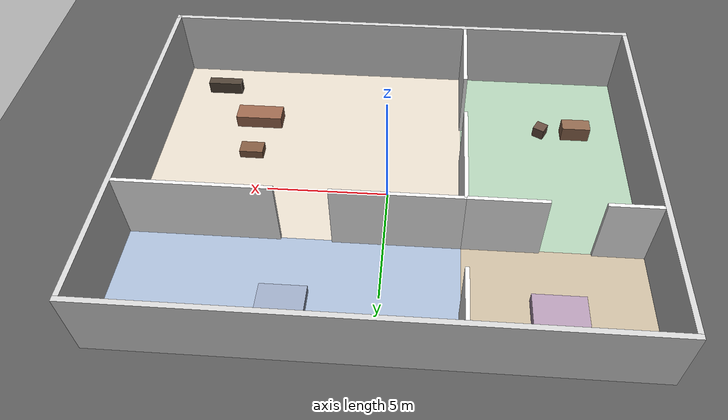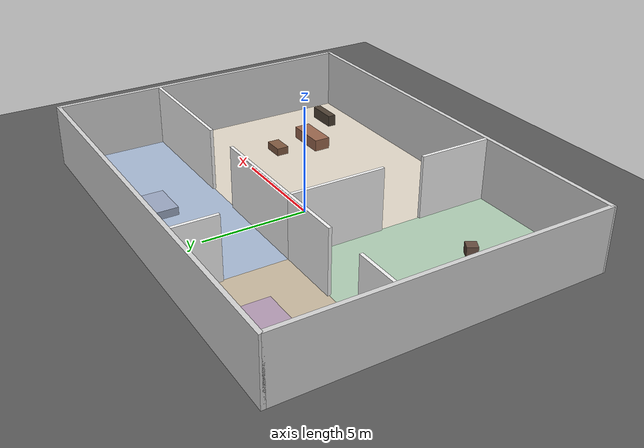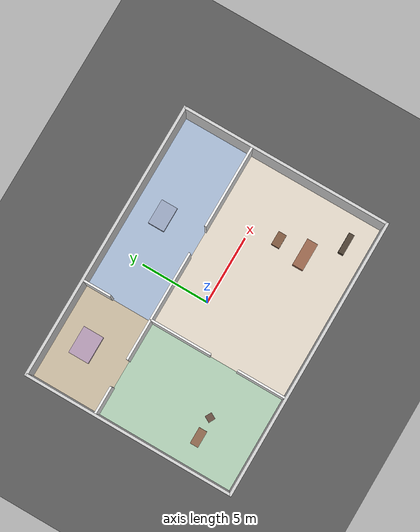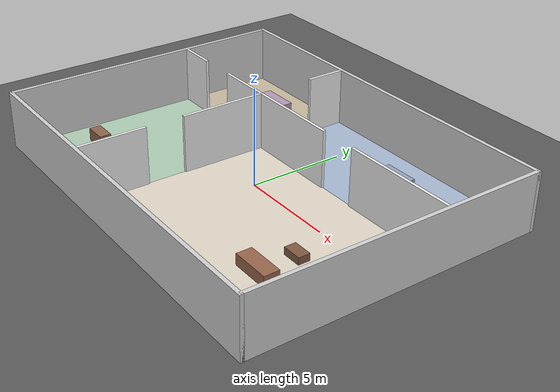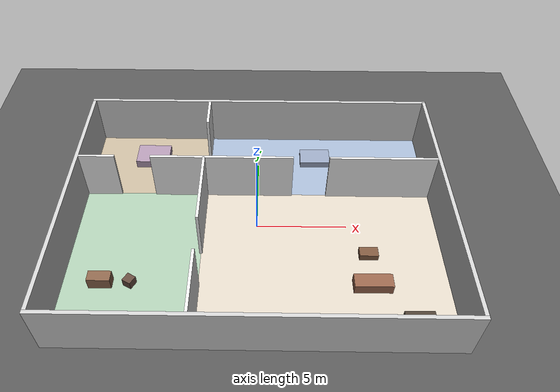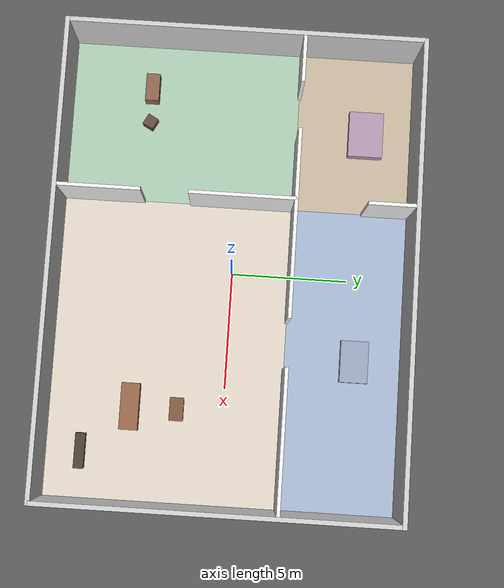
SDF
<?xml version="1.0"?>
<!--
  Gazebo Harmonic 室内仿真世界
  三室一厅布局，四面围墙，上不封顶
  房间尺寸：20m x 15m，墙高 3m
  卧室1（左上，大主卧）：8m x 5m
  卧室2（右上，次卧）  ：13m x 5m
  卧室3（左下，书房）  ：7m x 10m
  客厅（右侧大空间）   ：13m x 10m
-->
<sdf version="1.11">
  <world name="apartment_three_bedroom">

    <!-- ==================== 物理设定 ==================== -->
    <physics name="1ms" type="ignored">
      <max_step_size>0.001</max_step_size>
      <real_time_factor>1.0</real_time_factor>
      <real_time_update_rate>1000</real_time_update_rate>
    </physics>

    <!-- 核心系统插件 -->
    <plugin filename="gz-sim-physics-system"
      name="gz::sim::systems::Physics" />
    <plugin filename="gz-sim-scene-broadcaster-system"
      name="gz::sim::systems::SceneBroadcaster" />
    <plugin filename="gz-sim-sensors-system"
      name="gz::sim::systems::Sensors">
      <render_engine>ogre2</render_engine>
    </plugin>
    <plugin filename="gz-sim-user-commands-system"
      name="gz::sim::systems::UserCommands" />
    <plugin filename="gz-sim-imu-system"
      name="gz::sim::systems::Imu" />
    <plugin filename="gz-sim-contact-system"
      name="gz::sim::systems::Contact" />

    <!-- ==================== 场景与光照 ==================== -->
    <scene>
      <ambient>0.45 0.45 0.45 1.0</ambient>
      <background>0.65 0.68 0.72 1.0</background>
      <shadows>true</shadows>
      <grid>false</grid>
    </scene>

    <!-- 主光源：模拟日光 -->
    <light type="directional" name="sun">
      <pose>5 -5 8 0 0.6 0.8</pose>
      <cast_shadows>true</cast_shadows>
      <intensity>1.2</intensity>
      <direction>-0.3 0.3 -0.9</direction>
      <diffuse>1.0 0.95 0.85 1</diffuse>
      <specular>0.2 0.2 0.2 1</specular>
      <attenuation>
        <range>200</range>
        <linear>0</linear>
        <constant>0.8</constant>
        <quadratic>0</quadratic>
      </attenuation>
    </light>

    <!-- 补光：减少室内死角阴影 -->
    <light type="point" name="indoor_fill">
      <pose>0 0 2.8 0 0 0</pose>
      <cast_shadows>false</cast_shadows>
      <intensity>0.4</intensity>
      <diffuse>0.9 0.9 1.0 1</diffuse>
      <specular>0.1 0.1 0.1 1</specular>
      <attenuation>
        <range>25</range>
        <linear>0.05</linear>
        <constant>0.1</constant>
        <quadratic>0.01</quadratic>
      </attenuation>
    </light>

    <!-- ==================== 室外地面 ==================== -->
    <model name="ground_plane">
      <static>true</static>
      <link name="link">
        <collision name="collision">
          <geometry>
            <plane>
              <normal>0 0 1</normal>
              <size>200 200</size>
            </plane>
          </geometry>
          <surface>
            <friction>
              <ode>
                <mu>0.8</mu>
                <mu2>0.8</mu2>
              </ode>
            </friction>
          </surface>
        </collision>
        <visual name="visual">
          <geometry>
            <plane>
              <normal>0 0 1</normal>
              <size>200 200</size>
            </plane>
          </geometry>
          <material>
            <ambient>0.35 0.35 0.35 1</ambient>
            <diffuse>0.35 0.35 0.35 1</diffuse>
            <specular>0.05 0.05 0.05 1</specular>
          </material>
        </visual>
      </link>
    </model>

    <!-- ==================== 房间结构（静态） ==================== -->
    <model name="room_structure">
      <static>true</static>
      <pose>0 0 0 0 0 0</pose>

      <!-- ======================================================
           地面分区：用不同颜色区分各房间（薄板，避免 z-fighting）
           ====================================================== -->
      <!-- 客厅地面 -->
      <link name="floor_living">
        <pose>3.5 -2.5 0.01 0 0 0</pose>
        <visual name="visual">
          <geometry>
            <box>
              <size>13.0 10.0 0.02</size>
            </box>
          </geometry>
          <material>
            <ambient>0.88 0.84 0.78 1</ambient>
            <diffuse>0.88 0.84 0.78 1</diffuse>
            <specular>0.05 0.05 0.05 1</specular>
          </material>
        </visual>
        <collision name="collision">
          <geometry>
            <box>
              <size>13.0 10.0 0.02</size>
            </box>
          </geometry>
          <surface>
            <friction>
              <ode>
                <mu>0.7</mu>
                <mu2>0.7</mu2>
              </ode>
            </friction>
          </surface>
        </collision>
      </link>
      <!-- 卧室1（左上，大主卧）地面 -->
      <link name="floor_bedroom1">
        <pose>-6.5 5.0 0.01 0 0 0</pose>
        <visual name="visual">
          <geometry>
            <box>
              <size>7.0 5.0 0.02</size>
            </box>
          </geometry>
          <material>
            <ambient>0.78 0.72 0.62 1</ambient>
            <diffuse>0.78 0.72 0.62 1</diffuse>
            <specular>0.05 0.05 0.05 1</specular>
          </material>
        </visual>
        <collision name="collision">
          <geometry>
            <box>
              <size>7.0 5.0 0.02</size>
            </box>
          </geometry>
          <surface>
            <friction>
              <ode>
                <mu>0.6</mu>
                <mu2>0.6</mu2>
              </ode>
            </friction>
          </surface>
        </collision>
      </link>
      <!-- 卧室2（右上，次卧）地面 -->
      <link name="floor_bedroom2">
        <pose>3.5 5.0 0.01 0 0 0</pose>
        <visual name="visual">
          <geometry>
            <box>
              <size>13.0 5.0 0.02</size>
            </box>
          </geometry>
          <material>
            <ambient>0.65 0.72 0.82 1</ambient>
            <diffuse>0.65 0.72 0.82 1</diffuse>
            <specular>0.05 0.05 0.05 1</specular>
          </material>
        </visual>
        <collision name="collision">
          <geometry>
            <box>
              <size>13.0 5.0 0.02</size>
            </box>
          </geometry>
          <surface>
            <friction>
              <ode>
                <mu>0.6</mu>
                <mu2>0.6</mu2>
              </ode>
            </friction>
          </surface>
        </collision>
      </link>
      <!-- 卧室3（左下，书房/小卧）地面 -->
      <link name="floor_bedroom3">
        <pose>-6.5 -2.5 0.01 0 0 0</pose>
        <visual name="visual">
          <geometry>
            <box>
              <size>7.0 10.0 0.02</size>
            </box>
          </geometry>
          <material>
            <ambient>0.68 0.80 0.70 1</ambient>
            <diffuse>0.68 0.80 0.70 1</diffuse>
            <specular>0.05 0.05 0.05 1</specular>
          </material>
        </visual>
        <collision name="collision">
          <geometry>
            <box>
              <size>7.0 10.0 0.02</size>
            </box>
          </geometry>
          <surface>
            <friction>
              <ode>
                <mu>0.6</mu>
                <mu2>0.6</mu2>
              </ode>
            </friction>
          </surface>
        </collision>
      </link>

      <!-- ======================================================
           外墙（四面围墙，高 3m，厚 0.2m，上不封顶）
           ===================================================== -->
      <link name="wall_north">
        <pose>0.0 7.6 1.5 0 0 0</pose>
        <visual name="visual">
          <geometry>
            <box>
              <size>20.4 0.2 3.0</size>
            </box>
          </geometry>
          <material>
            <ambient>0.82 0.82 0.82 1</ambient>
            <diffuse>0.82 0.82 0.82 1</diffuse>
            <specular>0.1 0.1 0.1 1</specular>
          </material>
        </visual>
        <collision name="collision">
          <geometry>
            <box>
              <size>20.4 0.2 3.0</size>
            </box>
          </geometry>
          <surface>
            <friction>
              <ode>
                <mu>0.5</mu>
                <mu2>0.5</mu2>
              </ode>
            </friction>
          </surface>
        </collision>
      </link>
      <link name="wall_south">
        <pose>0.0 -7.6 1.5 0 0 0</pose>
        <visual name="visual">
          <geometry>
            <box>
              <size>20.4 0.2 3.0</size>
            </box>
          </geometry>
          <material>
            <ambient>0.82 0.82 0.82 1</ambient>
            <diffuse>0.82 0.82 0.82 1</diffuse>
            <specular>0.1 0.1 0.1 1</specular>
          </material>
        </visual>
        <collision name="collision">
          <geometry>
            <box>
              <size>20.4 0.2 3.0</size>
            </box>
          </geometry>
          <surface>
            <friction>
              <ode>
                <mu>0.5</mu>
                <mu2>0.5</mu2>
              </ode>
            </friction>
          </surface>
        </collision>
      </link>
      <link name="wall_west">
        <pose>-10.1 0.0 1.5 0 0 0</pose>
        <visual name="visual">
          <geometry>
            <box>
              <size>0.2 15.2 3.0</size>
            </box>
          </geometry>
          <material>
            <ambient>0.82 0.82 0.82 1</ambient>
            <diffuse>0.82 0.82 0.82 1</diffuse>
            <specular>0.1 0.1 0.1 1</specular>
          </material>
        </visual>
        <collision name="collision">
          <geometry>
            <box>
              <size>0.2 15.2 3.0</size>
            </box>
          </geometry>
          <surface>
            <friction>
              <ode>
                <mu>0.5</mu>
                <mu2>0.5</mu2>
              </ode>
            </friction>
          </surface>
        </collision>
      </link>
      <link name="wall_east">
        <pose>10.1 0.0 1.5 0 0 0</pose>
        <visual name="visual">
          <geometry>
            <box>
              <size>0.2 15.2 3.0</size>
            </box>
          </geometry>
          <material>
            <ambient>0.82 0.82 0.82 1</ambient>
            <diffuse>0.82 0.82 0.82 1</diffuse>
            <specular>0.1 0.1 0.1 1</specular>
          </material>
        </visual>
        <collision name="collision">
          <geometry>
            <box>
              <size>0.2 15.2 3.0</size>
            </box>
          </geometry>
          <surface>
            <friction>
              <ode>
                <mu>0.5</mu>
                <mu2>0.5</mu2>
              </ode>
            </friction>
          </surface>
        </collision>
      </link>

      <!-- ======================================================
           内墙：纵墙 x = -3（分隔左右两大区域，留门洞）
           ===================================================== -->
      <link name="wall_divider_x_south">
        <pose>-3.0 -5.75 1.5 0 0 0</pose>
        <visual name="visual">
          <geometry>
            <box>
              <size>0.15 3.5 3.0</size>
            </box>
          </geometry>
          <material>
            <ambient>0.95 0.95 0.95 1</ambient>
            <diffuse>0.95 0.95 0.95 1</diffuse>
            <specular>0.05 0.05 0.05 1</specular>
          </material>
        </visual>
        <collision name="collision">
          <geometry>
            <box>
              <size>0.15 3.5 3.0</size>
            </box>
          </geometry>
          <surface>
            <friction>
              <ode>
                <mu>0.5</mu>
                <mu2>0.5</mu2>
              </ode>
            </friction>
          </surface>
        </collision>
      </link>
      <link name="wall_divider_x_mid">
        <pose>-3.0 0.25 1.5 0 0 0</pose>
        <visual name="visual">
          <geometry>
            <box>
              <size>0.15 4.5 3.0</size>
            </box>
          </geometry>
          <material>
            <ambient>0.95 0.95 0.95 1</ambient>
            <diffuse>0.95 0.95 0.95 1</diffuse>
            <specular>0.05 0.05 0.05 1</specular>
          </material>
        </visual>
        <collision name="collision">
          <geometry>
            <box>
              <size>0.15 4.5 3.0</size>
            </box>
          </geometry>
          <surface>
            <friction>
              <ode>
                <mu>0.5</mu>
                <mu2>0.5</mu2>
              </ode>
            </friction>
          </surface>
        </collision>
      </link>
      <link name="wall_divider_x_north">
        <pose>-3.0 6.5 1.5 0 0 0</pose>
        <visual name="visual">
          <geometry>
            <box>
              <size>0.15 2.0 3.0</size>
            </box>
          </geometry>
          <material>
            <ambient>0.95 0.95 0.95 1</ambient>
            <diffuse>0.95 0.95 0.95 1</diffuse>
            <specular>0.05 0.05 0.05 1</specular>
          </material>
        </visual>
        <collision name="collision">
          <geometry>
            <box>
              <size>0.15 2.0 3.0</size>
            </box>
          </geometry>
          <surface>
            <friction>
              <ode>
                <mu>0.5</mu>
                <mu2>0.5</mu2>
              </ode>
            </friction>
          </surface>
        </collision>
      </link>

      <!-- ======================================================
           内墙：横墙 y = 2.5（分隔上排卧室与下排空间）
           ===================================================== -->
      <link name="wall_divider_y_west">
        <pose>-9.0 2.5 1.5 0 0 0</pose>
        <visual name="visual">
          <geometry>
            <box>
              <size>2.0 0.15 3.0</size>
            </box>
          </geometry>
          <material>
            <ambient>0.95 0.95 0.95 1</ambient>
            <diffuse>0.95 0.95 0.95 1</diffuse>
            <specular>0.05 0.05 0.05 1</specular>
          </material>
        </visual>
        <collision name="collision">
          <geometry>
            <box>
              <size>2.0 0.15 3.0</size>
            </box>
          </geometry>
          <surface>
            <friction>
              <ode>
                <mu>0.5</mu>
                <mu2>0.5</mu2>
              </ode>
            </friction>
          </surface>
        </collision>
      </link>
      <link name="wall_divider_y_west_east">
        <pose>-4.5 2.5 1.5 0 0 0</pose>
        <visual name="visual">
          <geometry>
            <box>
              <size>3.0 0.15 3.0</size>
            </box>
          </geometry>
          <material>
            <ambient>0.95 0.95 0.95 1</ambient>
            <diffuse>0.95 0.95 0.95 1</diffuse>
            <specular>0.05 0.05 0.05 1</specular>
          </material>
        </visual>
        <collision name="collision">
          <geometry>
            <box>
              <size>3.0 0.15 3.0</size>
            </box>
          </geometry>
          <surface>
            <friction>
              <ode>
                <mu>0.5</mu>
                <mu2>0.5</mu2>
              </ode>
            </friction>
          </surface>
        </collision>
      </link>
      <link name="wall_divider_y_east_west">
        <pose>-0.5 2.5 1.5 0 0 0</pose>
        <visual name="visual">
          <geometry>
            <box>
              <size>5.0 0.15 3.0</size>
            </box>
          </geometry>
          <material>
            <ambient>0.95 0.95 0.95 1</ambient>
            <diffuse>0.95 0.95 0.95 1</diffuse>
            <specular>0.05 0.05 0.05 1</specular>
          </material>
        </visual>
        <collision name="collision">
          <geometry>
            <box>
              <size>5.0 0.15 3.0</size>
            </box>
          </geometry>
          <surface>
            <friction>
              <ode>
                <mu>0.5</mu>
                <mu2>0.5</mu2>
              </ode>
            </friction>
          </surface>
        </collision>
      </link>
      <link name="wall_divider_y_east">
        <pose>7.0 2.5 1.5 0 0 0</pose>
        <visual name="visual">
          <geometry>
            <box>
              <size>6.0 0.15 3.0</size>
            </box>
          </geometry>
          <material>
            <ambient>0.95 0.95 0.95 1</ambient>
            <diffuse>0.95 0.95 0.95 1</diffuse>
            <specular>0.05 0.05 0.05 1</specular>
          </material>
        </visual>
        <collision name="collision">
          <geometry>
            <box>
              <size>6.0 0.15 3.0</size>
            </box>
          </geometry>
          <surface>
            <friction>
              <ode>
                <mu>0.5</mu>
                <mu2>0.5</mu2>
              </ode>
            </friction>
          </surface>
        </collision>
      </link>

      <!-- ======================================================
           简单家具：用于导航/避障仿真测试
           ===================================================== -->
      <link name="sofa">
        <pose>6 -4 0.3 0 0 0</pose>
        <visual name="visual">
          <geometry>
            <box>
              <size>2.0 0.8 0.6</size>
            </box>
          </geometry>
          <material>
            <ambient>0.6 0.4 0.3 1</ambient>
            <diffuse>0.6 0.4 0.3 1</diffuse>
            <specular>0.1 0.1 0.1 1</specular>
          </material>
        </visual>
        <collision name="collision">
          <geometry>
            <box>
              <size>2.0 0.8 0.6</size>
            </box>
          </geometry>
          <surface>
            <friction>
              <ode>
                <mu>0.8</mu>
                <mu2>0.8</mu2>
              </ode>
            </friction>
          </surface>
        </collision>
      </link>
      <link name="coffee_table">
        <pose>6 -2 0.2 0 0 0</pose>
        <visual name="visual">
          <geometry>
            <box>
              <size>1.0 0.6 0.4</size>
            </box>
          </geometry>
          <material>
            <ambient>0.5 0.35 0.25 1</ambient>
            <diffuse>0.5 0.35 0.25 1</diffuse>
            <specular>0.2 0.2 0.2 1</specular>
          </material>
        </visual>
        <collision name="collision">
          <geometry>
            <box>
              <size>1.0 0.6 0.4</size>
            </box>
          </geometry>
          <surface>
            <friction>
              <ode>
                <mu>0.6</mu>
                <mu2>0.6</mu2>
              </ode>
            </friction>
          </surface>
        </collision>
      </link>
      <link name="bed1">
        <pose>-6.5 5.5 0.25 0 0 0</pose>
        <visual name="visual">
          <geometry>
            <box>
              <size>2.0 1.5 0.5</size>
            </box>
          </geometry>
          <material>
            <ambient>0.7 0.6 0.7 1</ambient>
            <diffuse>0.7 0.6 0.7 1</diffuse>
            <specular>0.1 0.1 0.1 1</specular>
          </material>
        </visual>
        <collision name="collision">
          <geometry>
            <box>
              <size>2.0 1.5 0.5</size>
            </box>
          </geometry>
          <surface>
            <friction>
              <ode>
                <mu>0.7</mu>
                <mu2>0.7</mu2>
              </ode>
            </friction>
          </surface>
        </collision>
      </link>
      <link name="bed2">
        <pose>3.5 5.5 0.2 0 0 0</pose>
        <visual name="visual">
          <geometry>
            <box>
              <size>1.8 1.2 0.4</size>
            </box>
          </geometry>
          <material>
            <ambient>0.6 0.65 0.75 1</ambient>
            <diffuse>0.6 0.65 0.75 1</diffuse>
            <specular>0.1 0.1 0.1 1</specular>
          </material>
        </visual>
        <collision name="collision">
          <geometry>
            <box>
              <size>1.8 1.2 0.4</size>
            </box>
          </geometry>
          <surface>
            <friction>
              <ode>
                <mu>0.7</mu>
                <mu2>0.7</mu2>
              </ode>
            </friction>
          </surface>
        </collision>
      </link>
      <link name="desk3">
        <pose>-8 -4 0.35 0 0 0</pose>
        <visual name="visual">
          <geometry>
            <box>
              <size>1.2 0.6 0.7</size>
            </box>
          </geometry>
          <material>
            <ambient>0.55 0.4 0.3 1</ambient>
            <diffuse>0.55 0.4 0.3 1</diffuse>
            <specular>0.15 0.15 0.15 1</specular>
          </material>
        </visual>
        <collision name="collision">
          <geometry>
            <box>
              <size>1.2 0.6 0.7</size>
            </box>
          </geometry>
          <surface>
            <friction>
              <ode>
                <mu>0.6</mu>
                <mu2>0.6</mu2>
              </ode>
            </friction>
          </surface>
        </collision>
      </link>
      <link name="chair3">
        <pose>-6.5 -4 0.25 0 0 -0.5</pose>
        <visual name="visual">
          <geometry>
            <box>
              <size>0.5 0.5 0.5</size>
            </box>
          </geometry>
          <material>
            <ambient>0.4 0.3 0.25 1</ambient>
            <diffuse>0.4 0.3 0.25 1</diffuse>
            <specular>0.1 0.1 0.1 1</specular>
          </material>
        </visual>
        <collision name="collision">
          <geometry>
            <box>
              <size>0.5 0.5 0.5</size>
            </box>
          </geometry>
          <surface>
            <friction>
              <ode>
                <mu>0.6</mu>
                <mu2>0.6</mu2>
              </ode>
            </friction>
          </surface>
        </collision>
      </link>
      <link name="tv_stand">
        <pose>8 -6 0.3 0 0 0</pose>
        <visual name="visual">
          <geometry>
            <box>
              <size>1.5 0.4 0.6</size>
            </box>
          </geometry>
          <material>
            <ambient>0.3 0.25 0.2 1</ambient>
            <diffuse>0.3 0.25 0.2 1</diffuse>
            <specular>0.1 0.1 0.1 1</specular>
          </material>
        </visual>
        <collision name="collision">
          <geometry>
            <box>
              <size>1.5 0.4 0.6</size>
            </box>
          </geometry>
          <surface>
            <friction>
              <ode>
                <mu>0.6</mu>
                <mu2>0.6</mu2>
              </ode>
            </friction>
          </surface>
        </collision>
      </link>
    </model>

    <!-- ==================== 启动相机（可选） ==================== -->
    <gui fullscreen="0">
      <camera name="user_camera">
        <pose>-15 -15 12 0 0.8 0.9</pose>
        <view_controller>orbit</view_controller>
        <projection_type>perspective</projection_type>
      </camera>
    </gui>

  </world>
</sdf>
